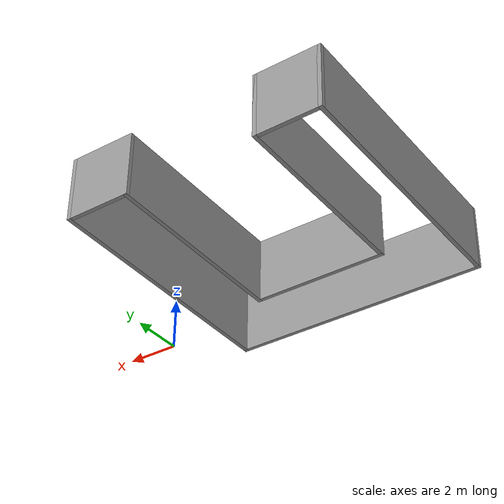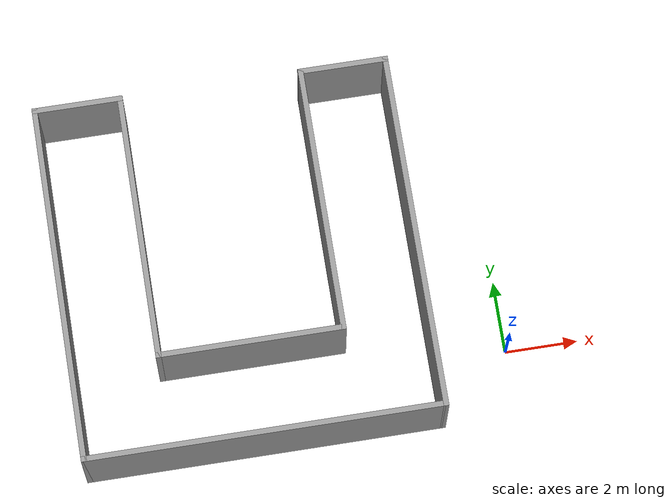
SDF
<?xml version='1.0'?>
<sdf version='1.7'>
  <model name='mybuilding'>
    <pose>-5.91908 3.16322 0 0 -0 0</pose>
    <link name='Wall_14'>
      <collision name='Wall_14_Collision'>
        <geometry>
          <box>
            <size>10 0.15 2.5</size>
          </box>
        </geometry>
        <pose>0 0 1.25 0 -0 0</pose>
      </collision>
      <visual name='Wall_14_Visual'>
        <pose>0 0 1.25 0 -0 0</pose>
        <geometry>
          <box>
            <size>10 0.15 2.5</size>
          </box>
        </geometry>
        <material>
          <script>
            <uri>file://media/materials/scripts/gazebo.material</uri>
            <name>Gazebo/Grey</name>
          </script>
          <ambient>1 1 1 1</ambient>
        </material>
        <meta>
          <layer>0</layer>
        </meta>
      </visual>
      <pose>-5.84398 0.000223 0 0 -0 -1.5708</pose>
    </link>
    <link name='Wall_16'>
      <collision name='Wall_16_Collision'>
        <geometry>
          <box>
            <size>9.8473 0.15 2.5</size>
          </box>
        </geometry>
        <pose>0 0 1.25 0 -0 0</pose>
      </collision>
      <visual name='Wall_16_Visual'>
        <pose>0 0 1.25 0 -0 0</pose>
        <geometry>
          <box>
            <size>9.8473 0.15 2.5</size>
          </box>
        </geometry>
        <material>
          <script>
            <uri>file://media/materials/scripts/gazebo.material</uri>
            <name>Gazebo/Grey</name>
          </script>
          <ambient>1 1 1 1</ambient>
        </material>
        <meta>
          <layer>0</layer>
        </meta>
      </visual>
      <pose>-0.995426 -4.925 0 0 -0 -4.6e-05</pose>
    </link>
    <link name='Wall_26'>
      <collision name='Wall_26_Collision'>
        <geometry>
          <box>
            <size>10 0.15 2.5</size>
          </box>
        </geometry>
        <pose>0 0 1.25 0 -0 0</pose>
      </collision>
      <visual name='Wall_26_Visual'>
        <pose>0 0 1.25 0 -0 0</pose>
        <geometry>
          <box>
            <size>10 0.15 2.5</size>
          </box>
        </geometry>
        <material>
          <script>
            <uri>file://media/materials/scripts/gazebo.material</uri>
            <name>Gazebo/Grey</name>
          </script>
          <ambient>1 1 1 1</ambient>
        </material>
        <meta>
          <layer>0</layer>
        </meta>
      </visual>
      <pose>3.85311 -0.00022 0 0 -0 1.5708</pose>
    </link>
    <link name='Wall_28'>
      <collision name='Wall_28_Collision'>
        <geometry>
          <box>
            <size>2.5 0.15 2.5</size>
          </box>
        </geometry>
        <pose>0 0 1.25 0 -0 0</pose>
      </collision>
      <visual name='Wall_28_Visual'>
        <pose>0 0 1.25 0 -0 0</pose>
        <geometry>
          <box>
            <size>2.5 0.15 2.5</size>
          </box>
        </geometry>
        <material>
          <script>
            <uri>file://media/materials/scripts/gazebo.material</uri>
            <name>Gazebo/Grey</name>
          </script>
          <ambient>1 1 1 1</ambient>
        </material>
        <meta>
          <layer>0</layer>
        </meta>
      </visual>
      <pose>2.67808 4.92478 0 0 -0 3.14159</pose>
    </link>
    <link name='Wall_30'>
      <collision name='Wall_30_Collision'>
        <geometry>
          <box>
            <size>2.5 0.15 2.5</size>
          </box>
        </geometry>
        <pose>0 0 1.25 0 -0 0</pose>
      </collision>
      <visual name='Wall_30_Visual'>
        <pose>0 0 1.25 0 -0 0</pose>
        <geometry>
          <box>
            <size>2.5 0.15 2.5</size>
          </box>
        </geometry>
        <material>
          <script>
            <uri>file://media/materials/scripts/gazebo.material</uri>
            <name>Gazebo/Grey</name>
          </script>
          <ambient>1 1 1 1</ambient>
        </material>
        <meta>
          <layer>0</layer>
        </meta>
      </visual>
      <pose>-4.66898 4.92522 0 0 -0 0</pose>
    </link>
    <link name='Wall_32'>
      <collision name='Wall_32_Collision'>
        <geometry>
          <box>
            <size>7.5 0.15 2.5</size>
          </box>
        </geometry>
        <pose>0 0 1.25 0 -0 0</pose>
      </collision>
      <visual name='Wall_32_Visual'>
        <pose>0 0 1.25 0 -0 0</pose>
        <geometry>
          <box>
            <size>7.5 0.15 2.5</size>
          </box>
        </geometry>
        <material>
          <script>
            <uri>file://media/materials/scripts/gazebo.material</uri>
            <name>Gazebo/Grey</name>
          </script>
          <ambient>1 1 1 1</ambient>
        </material>
        <meta>
          <layer>0</layer>
        </meta>
      </visual>
      <pose>-3.49398 1.25022 0 0 -0 -1.5708</pose>
    </link>
    <link name='Wall_34'>
      <collision name='Wall_34_Collision'>
        <geometry>
          <box>
            <size>7.5 0.15 2.5</size>
          </box>
        </geometry>
        <pose>0 0 1.25 0 -0 0</pose>
      </collision>
      <visual name='Wall_34_Visual'>
        <pose>0 0 1.25 0 -0 0</pose>
        <geometry>
          <box>
            <size>7.5 0.15 2.5</size>
          </box>
        </geometry>
        <material>
          <script>
            <uri>file://media/materials/scripts/gazebo.material</uri>
            <name>Gazebo/Grey</name>
          </script>
          <ambient>1 1 1 1</ambient>
        </material>
        <meta>
          <layer>0</layer>
        </meta>
      </visual>
      <pose>1.50308 1.24978 0 0 -0 -1.5708</pose>
    </link>
    <link name='Wall_35'>
      <collision name='Wall_35_Collision'>
        <geometry>
          <box>
            <size>5.14706 0.15 2.5</size>
          </box>
        </geometry>
        <pose>0 0 1.25 0 -0 0</pose>
      </collision>
      <visual name='Wall_35_Visual'>
        <pose>0 0 1.25 0 -0 0</pose>
        <geometry>
          <box>
            <size>5.14706 0.15 2.5</size>
          </box>
        </geometry>
        <material>
          <script>
            <uri>file://media/materials/scripts/gazebo.material</uri>
            <name>Gazebo/Grey</name>
          </script>
          <ambient>1 1 1 1</ambient>
        </material>
        <meta>
          <layer>0</layer>
        </meta>
      </visual>
      <pose>-0.99545 -2.425 0 0 -0 3.1415</pose>
    </link>
    <static>1</static>
  </model>
</sdf>
